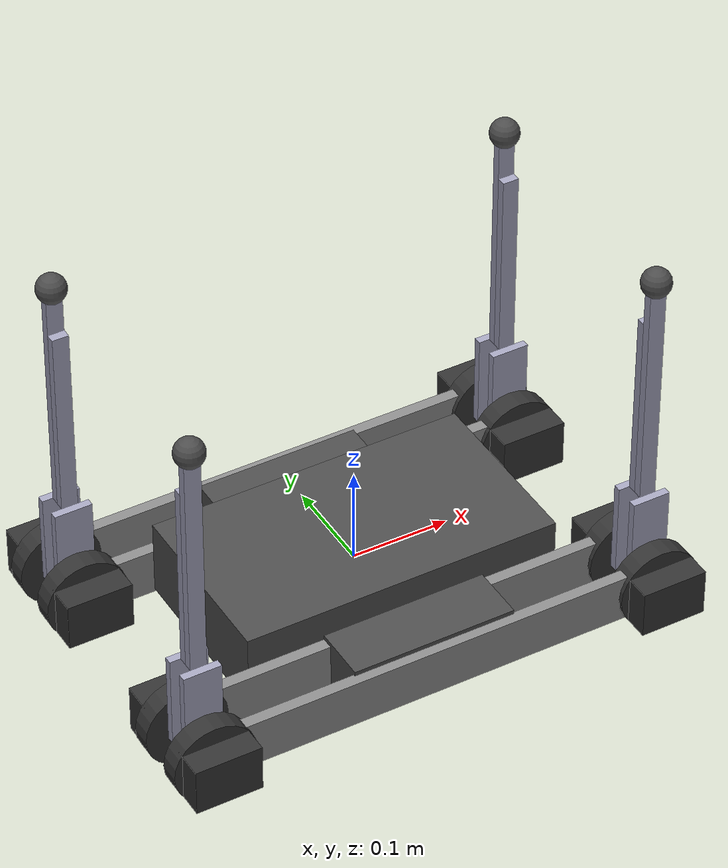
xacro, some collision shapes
<?xml version="1.0" ?>
<!--LICENSE:                                                                 -->
<!--Copyright (c) 2017, Erwin Coumans                                        -->
<!--Google Inc.                                                              -->
<!--All rights reserved.                                                     -->
<!--Redistribution and use in source and binary forms, with or without       -->
<!--modification, are permitted provided that the following conditions are   -->
<!--met:                                                                     -->
<!--1. Redistributions or derived work must retain this copyright notice,    -->
<!--   this list of conditions and the following disclaimer.                 -->
<!--2. Redistributions in binary form must reproduce the above copyright     -->
<!--   notice, this list of conditions and the following disclaimer in the   -->
<!--   documentation and/or other materials provided with the distribution.  -->
<!--THIS SOFTWARE IS PROVIDED BY THE COPYRIGHT HOLDERS AND CONTRIBUTORS "AS  -->
<!--IS" AND ANY EXPRESS OR IMPLIED WARRANTIES, INCLUDING, BUT NOT LIMITED TO,-->
<!--THE IMPLIED WARRANTIES OF MERCHANTABILITY AND FITNESS FOR A PARTICULAR   -->
<!--PURPOSE ARE DISCLAIMED. IN NO EVENT SHALL THE COPYRIGHT HOLDER OR        -->
<!--CONTRIBUTORS BE LIABLE FOR ANY DIRECT, INDIRECT, INCIDENTAL, SPECIAL,    -->
<!--EXEMPLARY, OR CONSEQUENTIAL DAMAGES (INCLUDING, BUT NOT LIMITED TO,      -->
<!--PROCUREMENT OF SUBSTITUTE GOODS OR SERVICES; LOSS OF USE, DATA, OR       -->
<!--PROFITS; OR BUSINESS INTERRUPTION) HOWEVER CAUSED AND ON ANY THEORY OF   -->
<!--LIABILITY, WHETHER IN CONTRACT, STRICT LIABILITY, OR TORT (INCLUDING     -->
<!--NEGLIGENCE OR OTHERWISE) ARISING IN ANY WAY OUT OF THE USE OF THIS       -->
<!--SOFTWARE, EVEN IF ADVISED OF THE POSSIBILITY OF SUCH DAMAGE.             -->

<robot xmlns:xacro="http://www.ros.org/wiki/xacro" name="minitaur">

	<!-- Define parameters -->
	<xacro:property name="bodyLength" value="0.33"/>
	<xacro:property name="bodyWidth" value="0.1855"/>
	<xacro:property name="bodyHeight" value="0.08"/>
	<xacro:property name="bodySideLength" value="0.17"/>
	<xacro:property name="bodySideWidth" value="0.10"/>
	<xacro:property name="bodySideHeight" value="0.05"/>
	<xacro:property name="bodyMass" value="3.516"/>        <!-- 7.18kg minitaur total weight - 0.016*4 - 0.10*8 - 0.25*8 - 0.05*8 - 0.05*8 = 3.516 -->
	<xacro:property name="frameMass" value="0.16"/>        <!-- * 4 frames -->
	<xacro:property name="motorModuleMass" value="0.10"/>  <!-- * 8 motor modules -->
	<xacro:property name="motorMass" value="0.25"/>        <!-- * 8 motors -->
	<xacro:property name="upperLegMass" value="0.05"/>     <!-- * 8 upper legs -->
	<xacro:property name="lowerLegMass" value="0.05"/>     <!-- * 8 lower legs -->
	<xacro:property name="toeMass" value="0.01"/>
	<xacro:property name="chassisLength" value="0.34"/>
	<xacro:property name="chassisWidth" value="0.01"/>
	<xacro:property name="chassisHeight" value="0.04"/>
	<xacro:property name="motorLength" value="0.021"/>
	<xacro:property name="motorRadius" value="0.0425"/>
	<xacro:property name="upperLegWidth" value="0.039"/>
	<xacro:property name="upperLegHeight" value="0.008"/>
	<xacro:property name="upperLegLength" value="0.1"/>
	<xacro:property name="lowerLegWidth" value="0.017"/>
	<xacro:property name="lowerLegHeight" value="0.009"/>
	<xacro:property name="lowerLegLength" value="0.2"/>
	<xacro:property name="lowerLegLengthToe" value="0.248"/>
	<xacro:property name="toeRadius" value="0.015"/>
	<xacro:property name="toeStiffness" value="30000.0"/>
	<xacro:property name="toeDamping" value="1000.0"/>
	<xacro:property name="toeSpinningFriction" value="0.3"/>
	<xacro:property name="toeLateralFriction" value="0.7"/>

	<!-- Define materials -->
	<material name="black">
		<color rgba="0.3 0.3 0.3 1"/>
	</material>
	<material name="grey">
		<color rgba="0.5 0.5 0.5 1"/>
	</material>
	<material name="frameGrey">
		<color rgba="0.55 0.55 0.55 1"/>
	</material>
	<material name="legGrey">
		<color rgba="0.65 0.65 0.75 1"/>
	</material>
	<material name="motor">
		<color rgba="0.2 0.2 0.2 1"/>
	</material>

	<!-- Body -->
	<link name="base_chassis_link">
		<visual>
			<geometry>
				<box size="${bodyLength} ${bodyWidth} ${bodyHeight}"/>
			</geometry>
			<material name="black"/>
		</visual>
		<visual>
			<origin rpy="0 0 0" xyz="0 0.10 -0.014"/>
			<geometry>
				<box size="${bodySideLength} ${bodySideWidth} ${bodySideHeight}"/>
			</geometry>
			<material name="black"/>
		</visual>
		<visual>
			<origin rpy="0 0 0" xyz="0 -0.10 -0.014"/>
			<geometry>
				<box size="${bodySideLength} ${bodySideWidth} ${bodySideHeight}"/>
			</geometry>
			<material name="black"/>
		</visual>
		<collision>
			<geometry>
				<box size="${bodyLength} ${bodyWidth} ${bodyHeight}"/>
			</geometry>
		</collision>
		<collision>
			<origin rpy="0 0 0" xyz="0 0.10 -0.014"/>
			<geometry>
				<box size="${bodySideLength} ${bodySideWidth} ${bodySideHeight}"/>
			</geometry>
		</collision>
		<collision>
			<origin rpy="0 0 0" xyz="0 -0.10 -0.014"/>
			<geometry>
				<box size="${bodySideLength} ${bodySideWidth} ${bodySideHeight}"/>
			</geometry>
		</collision>
		<inertial>
			<mass value="${bodyMass}"/>
			<!-- https://en.wikipedia.org/wiki/List_of_moments_of_inertia Solid Cuboid -->
			<inertia ixx="${bodyMass*(bodyWidth*bodyWidth + bodyHeight*bodyHeight)/12}" ixy="0.0" ixz="0.0"
					 iyy="${bodyMass*(bodyLength*bodyLength + bodyHeight*bodyHeight)/12}" iyz="0.0"
					 izz="${bodyMass*(bodyLength*bodyLength + bodyWidth*bodyWidth)/12}"/>
		</inertial>
	</link>

	<!-- Frame -->
	<link name="frame1">
		<visual>
			<origin rpy="0 0 0" xyz="-0.22 0 0"/>
			<geometry>
				<box size="0.468 .012 .050"/>
			</geometry>
			<material name="frameGrey"/>
		</visual>
		<collision>
			<origin rpy="0 0 0" xyz="-0.22 0 0"/>
			<geometry>
				<box size="0.468 .012 .050"/>
			</geometry>
		</collision>
		<inertial>
			<origin rpy="0 0 0" xyz="0 -0.03 0"/>
			<mass value="${frameMass}"/>
			<inertia ixx=".00011397" ixy=".0" ixz=".0" iyy=".00011397" iyz=".0" izz=".00021765"/>
		</inertial>
	</link>
	<joint name="frame1_joint" type="fixed">
	  	<axis xyz="0 0 1"/>
		<parent link="base_chassis_link"/>
		<child link="frame1"/>
		<origin rpy="0 0 0" xyz=".2375 -0.154 -.0185"/>
		<limit effort="100" velocity="100"/>
		<joint_properties damping=".0" friction=".0"/>
	</joint>
	<link name="frame2">
		<visual>
			<origin rpy="0 0 0" xyz="-0.22 0 0"/>
			<geometry>
				<box size="0.468 .012 .050"/>
			</geometry>
			<material name="frameGrey"/>
		</visual>
		<collision>
			<origin rpy="0 0 0" xyz="-0.22 0 0"/>
			<geometry>
				<box size="0.468 .012 .050"/>
			</geometry>
		</collision>
		<inertial>
			<origin rpy="0 0 0" xyz="0 0.02 0"/>
			<mass value="${frameMass}"/>
			<inertia ixx=".00011397" ixy=".0" ixz=".0" iyy=".00011397" iyz=".0" izz=".00021765"/>
		</inertial>
	</link>
	<joint name="frame2_joint" type="fixed">
	  	<axis xyz="0 0 1"/>
		<parent link="base_chassis_link"/>
		<child link="frame2"/>
		<origin rpy="0 0 0" xyz=".2375 0.154 -.0185"/>
		<limit effort="100" velocity="100"/>
		<joint_properties damping=".0" friction=".0"/>
	</joint>
	<link name="frame3">
		<visual>
			<origin rpy="0 0 0" xyz="0.22 0.055 0"/>
			<geometry>
				<box size="0.468 .012 .050"/>
			</geometry>
			<material name="frameGrey"/>
		</visual>
		<collision>
			<origin rpy="0 0 0" xyz="0.22 0.055 0"/>
			<geometry>
				<box size="0.468 .012 .050"/>
			</geometry>
		</collision>
		<inertial>
			<origin rpy="0 0 0" xyz="0 -0.03 0"/>
			<mass value="${frameMass}"/>
			<inertia ixx=".00011397" ixy=".0" ixz=".0" iyy=".00011397" iyz=".0" izz=".00021765"/>
		</inertial>
	</link>
	<joint name="frame3_joint" type="fixed">
	  	<axis xyz="0 0 1"/>
		<parent link="base_chassis_link"/>
		<child link="frame3"/>
		<origin rpy="0 0 0" xyz="-.2375 -0.154 -.0185"/>
		<limit effort="100" velocity="100"/>
		<joint_properties damping=".0" friction=".0"/>
	</joint>
	<link name="frame4">
		<visual>
			<origin rpy="0 0 0" xyz="0.22 -0.055 0"/>
			<geometry>
				<box size="0.468 .012 .050"/>
			</geometry>
			<material name="frameGrey"/>
		</visual>
		<collision>
			<origin rpy="0 0 0" xyz="0.22 -0.055 0"/>
			<geometry>
				<box size="0.468 .012 .050"/>
			</geometry>
		</collision>
		<inertial>
			<origin rpy="0 0 0" xyz="0 0.02 0"/>
			<mass value="${frameMass}"/>
			<inertia ixx=".00011397" ixy=".0" ixz=".0" iyy=".00011397" iyz=".0" izz=".00021765"/>
		</inertial>
	</link>
	<joint name="frame4" type="fixed">
	  	<axis xyz="0 0 1"/>
		<parent link="base_chassis_link"/>
		<child link="frame4"/>
		<origin rpy="0 0 0" xyz="-.2375 0.154 -.0185"/>
		<limit effort="100" velocity="100"/>
		<joint_properties damping=".0" friction=".0"/>
	</joint>

	<!-- Inside motor module boxes -->
	<link name="chassis_right">
		<visual>
			<origin rpy="0 0 0" xyz=".2375 .049 0"/>
			<geometry>
				<box size=".068 .032 .050"/>
			</geometry>
			<material name="motor"/>
		</visual>
		<visual>
			<origin rpy="0 0 0" xyz="-.2375 .049 0"/>
			<geometry>
				<box size=".068 .032 .050"/>
			</geometry>
			<material name="motor"/>
		</visual>
		<collision>
			<origin rpy="0 0 0" xyz=".2375 .049 0"/>
			<geometry>
				<box size=".068 .032 .050"/>
			</geometry>
		</collision>
		<collision>
			<origin rpy="0 0 0" xyz="-.2375 .049 0"/>
			<geometry>
				<box size=".068 .032 .050"/>
			</geometry>
		</collision>
		<inertial>
			<mass value="${motorModuleMass*2}"/>
			<inertia ixx=".004147" ixy=".0" ixz=".0" iyy=".040913" iyz=".0" izz=".041840"/>
		</inertial>
	</link>
	<joint name="chassis_right_center" type="fixed">
		<axis xyz="0 0 1"/>
		<parent link="base_chassis_link"/>
		<child link="chassis_right"/>
		<origin rpy="0 0 0" xyz="0 -.1265 -.0185"/>
		<limit effort="100" velocity="100"/>
		<joint_properties damping=".0" friction=".0"/>
	</joint>
	<link name="chassis_left">
		<visual>
			<origin rpy="0 0 0" xyz=".2375 -.049 0"/>
			<geometry>
				<box size=".068 .032 .050"/>
			</geometry>
			<material name="motor"/>
		</visual>
		<visual>
			<origin rpy="0 0 0" xyz="-.2375 -.049 0"/>
			<geometry>
				<box size=".068 .032 .050"/>
			</geometry>
			<material name="motor"/>
		</visual>
		<collision>
			<origin rpy="0 0 0" xyz=".2375 -.049 0"/>
			<geometry>
				<box size=".068 .032 .050"/>
			</geometry>
		</collision>
		<collision>
			<origin rpy="0 0 0" xyz="-.2375 -.049 0"/>
			<geometry>
				<box size=".068 .032 .050"/>
			</geometry>
		</collision>
		<inertial>
			<mass value="${motorModuleMass*2}"/>
			<inertia ixx=".004147" ixy=".0" ixz=".0" iyy=".040913" iyz=".0" izz=".041840"/>
		</inertial>
	</link>
	<joint name="chassis_left_center" type="fixed">
		<axis xyz="0 0 1"/>
		<parent link="base_chassis_link"/>
		<child link="chassis_left"/>
		<origin rpy="0 0 0" xyz="0 .1265 -.0185"/>
		<limit effort="100" velocity="100"/>
		<joint_properties damping=".0" friction=".0"/>
	</joint>

	<!-- Outside motor module boxes -->
	<link name="motor_front_rightR_bracket_link">
		<visual>
			<origin rpy="0 0 0" xyz="0 -0.02 0"/>
			<geometry>
				<box size="0.068 .032 .050"/>
			</geometry>
			<material name="motor"/>
		</visual>
		<collision>
			<origin rpy="0 0 0" xyz="0 -0.02 0"/>
			<geometry>
				<box size=".068 .032 .050"/>
			</geometry>
		</collision>
		<inertial>
			<origin rpy="0 0 0" xyz="0 -0.03 0"/>
			<mass value="${motorModuleMass}"/>
			<inertia ixx=".00011397" ixy=".0" ixz=".0" iyy=".00011397" iyz=".0" izz=".00021765"/>
		</inertial>
	</link>
	<joint name="motor_front_rightR_bracket_joint" type="fixed">
	  	<axis xyz="0 0 1"/>
		<parent link="base_chassis_link"/>
		<child link="motor_front_rightR_bracket_link"/>
		<origin rpy="0 0 0" xyz=".2375 -0.154 -.0185"/>
		<limit effort="100" velocity="100"/>
		<joint_properties damping=".0" friction=".0"/>
	</joint>
	<link name="motor_front_leftL_bracket_link">
		<visual>
			<origin rpy="0 0 0" xyz="0 0.02 0"/>
			<geometry>
				<box size="0.068 .032 .050"/>
			</geometry>
			<material name="motor"/>
		</visual>
		<collision>
			<origin rpy="0 0 0" xyz="0 0.02 0"/>
			<geometry>
				<box size=".068 .032 .050"/>
			</geometry>
		</collision>
		<inertial>
			<origin rpy="0 0 0" xyz="0 0.02 0"/>
			<mass value="${motorModuleMass}"/>
			<inertia ixx=".00011397" ixy=".0" ixz=".0" iyy=".00011397" iyz=".0" izz=".00021765"/>
		</inertial>
	</link>
	<joint name="motor_front_leftL_bracket_joint" type="fixed">
	  	<axis xyz="0 0 1"/>
		<parent link="base_chassis_link"/>
		<child link="motor_front_leftL_bracket_link"/>
		<origin rpy="0 0 0" xyz=".2375 0.154 -.0185"/>
		<limit effort="100" velocity="100"/>
		<joint_properties damping=".0" friction=".0"/>
	</joint>
	<link name="motor_back_rightR_bracket_link">
	<visual>
			<origin rpy="0 0 0" xyz="0 -0.02 0"/>
			<geometry>
				<box size="0.068 .032 .050"/>
			</geometry>
			<material name="motor"/>
		</visual>
		<collision>
			<origin rpy="0 0 0" xyz="0 -0.02 0"/>
			<geometry>
				<box size=".068 .032 .050"/>
			</geometry>
		</collision>
		<inertial>
			<origin rpy="0 0 0" xyz="0 -0.03 0"/>
			<mass value="${motorModuleMass}"/>
			<inertia ixx=".00011397" ixy=".0" ixz=".0" iyy=".00011397" iyz=".0" izz=".00021765"/>
		</inertial>
	</link>
	<joint name="motor_back_rightR_bracket_joint" type="fixed">
	  	<axis xyz="0 0 1"/>
		<parent link="base_chassis_link"/>
		<child link="motor_back_rightR_bracket_link"/>
		<origin rpy="0 0 0" xyz="-.2375 -0.154 -.0185"/>
		<limit effort="100" velocity="100"/>
		<joint_properties damping=".0" friction=".0"/>
	</joint>
	<link name="motor_back_leftL_bracket_link">
		<visual>
			<origin rpy="0 0 0" xyz="0 0.02 0"/>
			<geometry>
				<box size="0.068 .032 .050"/>
			</geometry>
			<material name="motor"/>
		</visual>
		<collision>
			<origin rpy="0 0 0" xyz="0 0.02 0"/>
			<geometry>
				<box size=".068 .032 .050"/>
			</geometry>
		</collision>
		<inertial>
			<origin rpy="0 0 0" xyz="0 0.02 0"/>
			<mass value="${motorModuleMass}"/>
			<inertia ixx=".00011397" ixy=".0" ixz=".0" iyy=".00011397" iyz=".0" izz=".00021765"/>
		</inertial>
	</link>
	<joint name="motor_back_leftL_bracket_joint" type="fixed">
	  	<axis xyz="0 0 1"/>
		<parent link="base_chassis_link"/>
		<child link="motor_back_leftL_bracket_link"/>
		<origin rpy="0 0 0" xyz="-.2375 0.154 -.0185"/>
		<limit effort="100" velocity="100"/>
		<joint_properties damping=".0" friction=".0"/>
	</joint>

	<!-- Define our motor macro -->
	<xacro:macro name="motor" params="jointNumber location side LR originRPY originXYZ chassis axis">
		<link name="motor_${location}_${side}${LR}_link">
			<visual>
				<geometry>
					<mesh filename="package://minitaur_description/meshes/tmotor3.obj" scale="1.0 1.0 1.0"/>
				</geometry>
				<material name="motor"/>
			</visual>
			<collision>
				<geometry>
					<cylinder length="${motorLength}" radius="${motorRadius}"/>
				</geometry>
			</collision>
			<inertial>
				<mass value="${motorMass}"/>
				<inertia ixx=".00011397" ixy=".0" ixz=".0" iyy=".00011397" iyz=".0" izz=".00021765"/>
			</inertial>
		</link>
		<joint name="${jointNumber}" type="continuous">
			<axis xyz="${axis}"/>
			<parent link="${chassis}"/>
			<child link="motor_${location}_${side}${LR}_link"/>
			<origin rpy="${originRPY}" xyz="${originXYZ}"/>
			<limit effort="100" velocity="100"/>
			<joint_properties damping="0.0" friction="0.0"/>
		</joint>
	</xacro:macro>

	<!-- Motors -->
	<xacro:motor jointNumber="5" location="front" side="right" LR="R" originRPY="1.57075 0 0" originXYZ="0 0 0" chassis="motor_front_rightR_bracket_link" axis="0 0 1"/>
	<xacro:motor jointNumber="4" location="front" side="right" LR="L" originRPY="1.57075 0 0" originXYZ=".2375 .0275 0" chassis="chassis_right" axis="0 0 -1"/>

	<xacro:motor jointNumber="0" location="front" side="left"  LR="L" originRPY="1.57075 0 0" originXYZ="0 0 0" chassis="motor_front_leftL_bracket_link" axis="0 0 -1"/>
	<xacro:motor jointNumber="1" location="front" side="left"  LR="R" originRPY="1.57075 0 0" originXYZ=".2375 -.0275 0" chassis="chassis_left" axis="0 0 1"/>

	<xacro:motor jointNumber="7" location="back"  side="right" LR="R" originRPY="1.57075 0 0" originXYZ="0 0 0" chassis="motor_back_rightR_bracket_link" axis="0 0 1"/>
	<xacro:motor jointNumber="6" location="back"  side="right" LR="L" originRPY="1.57075 0 0" originXYZ="-.2375 .0275 0" chassis="chassis_right" axis="0 0 -1"/>

	<xacro:motor jointNumber="2" location="back"  side="left"  LR="L" originRPY="1.57075 0 0" originXYZ="0 0 0" chassis="motor_back_leftL_bracket_link" axis="0 0 -1"/>
	<xacro:motor jointNumber="3" location="back"  side="left"  LR="R" originRPY="1.57075 0 0" originXYZ="-.2375 -.0275 0" chassis="chassis_left" axis="0 0 1"/>

	<!-- Define our upper leg macro -->
	<xacro:macro name="upperLeg" params="location hip xyz">
		<link name="upper_leg_${location}_link">
			<visual>
				<geometry>
					<box size="${upperLegWidth} ${upperLegHeight} ${upperLegLength}"/>
				</geometry>
				<material name="legGrey"/>
			</visual>
			<collision>
				<geometry>
					<box size="${upperLegWidth} ${upperLegHeight} ${upperLegLength}"/>
				</geometry>
			</collision>
			<inertial>
				<mass value="${upperLegMass}"/>
				<inertia ixx=".000038770" ixy=".0" ixz=".0" iyy=".000042198" iyz=".0" izz=".0000036030"/>
			</inertial>
		</link>
		<joint name="${hip}_${location}_link" type="fixed">
			<axis xyz="0 0 1"/>
			<parent link="motor_${location}_link"/>
			<child link="upper_leg_${location}_link"/>
			<origin rpy="-1.57075 0 0" xyz="${xyz}"/>
			<limit effort="100" velocity="100"/>
			<joint_properties damping="0.0" friction="0.0"/>
		</joint>
	</xacro:macro>

	<!-- Define our lower leg macro -->
	<xacro:macro name="lowerLeg" params="jointNumber location lowerLegLengthIn toeSuffix toe flipped">
		<link name="lower_leg_${location}_link">
			<contact>
				<friction_anchor/>
				<stiffness value="3000.0"/>
				<damping value="100.0"/>
				<spinning_friction value=".05"/>
				<lateral_friction value="1"/>
			</contact>
			<visual>
				<origin rpy="0 0 0" xyz="0 0 ${0.5*lowerLegLengthIn}"/>
				<geometry>
					<box size="${lowerLegWidth} ${lowerLegHeight} ${lowerLegLengthIn}"/>
				</geometry>
				<material name="legGrey"/>
			</visual>
			<collision>
				<origin rpy="0 0 0" xyz="0 0 ${0.5*lowerLegLengthIn}"/>
				<geometry>
					<box size="${lowerLegWidth} ${lowerLegHeight} ${lowerLegLengthIn}"/>
				</geometry>
			</collision>
			<inertial>
				<origin rpy="0 0 0" xyz="0 0 ${0.5*lowerLegLengthIn}"/>
				<mass value="${lowerLegMass}"/>
				<inertia ixx=".00032459" ixy=".0" ixz=".0" iyy=".00032637" iyz=".0" izz=".000002178"/>
			</inertial>
		</link>
		<joint name="${jointNumber}" type="continuous">
			<axis xyz="0 ${flipped} 0"/>
			<parent link="upper_leg_${location}_link"/>
			<child link="lower_leg_${location}_link"/>
			<origin rpy="0 0 0" xyz="0 ${0.0085 * flipped} ${0.5*upperLegLength}"/>
			<limit effort="100" velocity="100"/>
			<joint_properties damping="0.0" friction="0.0"/>
		</joint>

		<xacro:if value="${toe}">
			<!-- Toe -->
			<link name="toe${toeSuffix}">
				<contact>
					<friction_anchor/>
					<stiffness value="${toeStiffness}"/>
					<damping value="${toeDamping}"/>
					<spinning_friction value="${toeSpinningFriction}"/>
					<lateral_friction value="${toeLateralFriction}"/>
				</contact>
				<visual>
					<origin rpy="0 0 0" xyz="0 0 0"/>
					<geometry>
						<sphere radius="${toeRadius}"/>
					</geometry>
					<material name="black"/>
				</visual>
				<collision>
					<origin rpy="0 0 0" xyz="0 0 0"/>
					<geometry>
						<sphere radius="${toeRadius}"/>
					</geometry>
				</collision>
				<inertial>
					<mass value="${toeMass}"/>
					<inertia ixx="0.000025"  ixy="0"  ixz="0" iyy="0.000025" iyz="0" izz="0.000025" />
				</inertial>
			</link>
			<joint name="toe${toeSuffix}" type="fixed">
				<parent link="lower_leg_${location}_link"/>
				<child link="toe${toeSuffix}"/>
				<origin xyz="0 0 ${lowerLegLengthIn}"/>
				<dynamics damping="0.0" friction="0.0"/>
			</joint>
		</xacro:if>

	</xacro:macro>

	<!-- Legs -->
	<xacro:upperLeg location="front_rightR" hip="hip" xyz="0 .045 -.0145"/>
	<xacro:upperLeg location="front_rightL" hip="motor" xyz="0 .045 .0145"/>
	<xacro:upperLeg location="front_leftR" hip="hip" xyz="0 .045 -.0145"/>
	<xacro:upperLeg location="front_leftL" hip="motor" xyz="0 .045 .0145"/>
	<xacro:upperLeg location="back_rightR" hip="hip" xyz="0 .045 -.0145"/>
	<xacro:upperLeg location="back_rightL" hip="motor" xyz="0 .045 .0145"/>
	<xacro:upperLeg location="back_leftR" hip="hip" xyz="0 .045 -.0145"/>
	<xacro:upperLeg location="back_leftL" hip="motor" xyz="0 .045 .0145"/>

	<!-- Lower legs and flexy knee joints -->
	<xacro:lowerLeg jointNumber="8" toeSuffix="0" toe="true" lowerLegLengthIn="${lowerLegLengthToe}" location="front_leftL" flipped="-1"/>
	<xacro:lowerLeg jointNumber="9" toeSuffix="1" toe="false" lowerLegLengthIn="${lowerLegLength}" location="front_leftR" flipped="1"/>
	<xacro:lowerLeg jointNumber="10" toeSuffix="2" toe="true" lowerLegLengthIn="${lowerLegLengthToe}" location="back_leftL" flipped="-1"/>
	<xacro:lowerLeg jointNumber="11" toeSuffix="3" toe="false" lowerLegLengthIn="${lowerLegLength}" location="back_leftR" flipped="1"/>
	<xacro:lowerLeg jointNumber="12" toeSuffix="4" toe="false" lowerLegLengthIn="${lowerLegLength}" location="front_rightL" flipped="-1"/>
	<xacro:lowerLeg jointNumber="13" toeSuffix="5" toe="true" lowerLegLengthIn="${lowerLegLengthToe}" location="front_rightR" flipped="1"/>
	<xacro:lowerLeg jointNumber="14" toeSuffix="6" toe="false" lowerLegLengthIn="${lowerLegLength}" location="back_rightL" flipped="-1"/>
	<xacro:lowerLeg jointNumber="15" toeSuffix="7" toe="true" lowerLegLengthIn="${lowerLegLengthToe}" location="back_rightR" flipped="1"/>

</robot>
